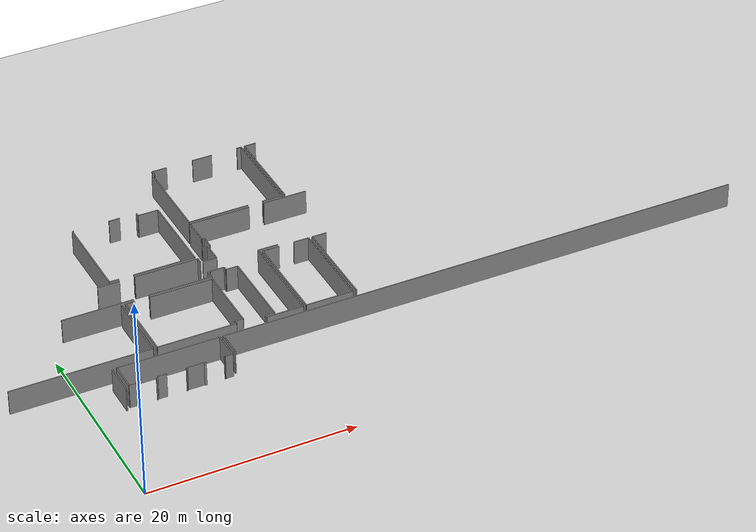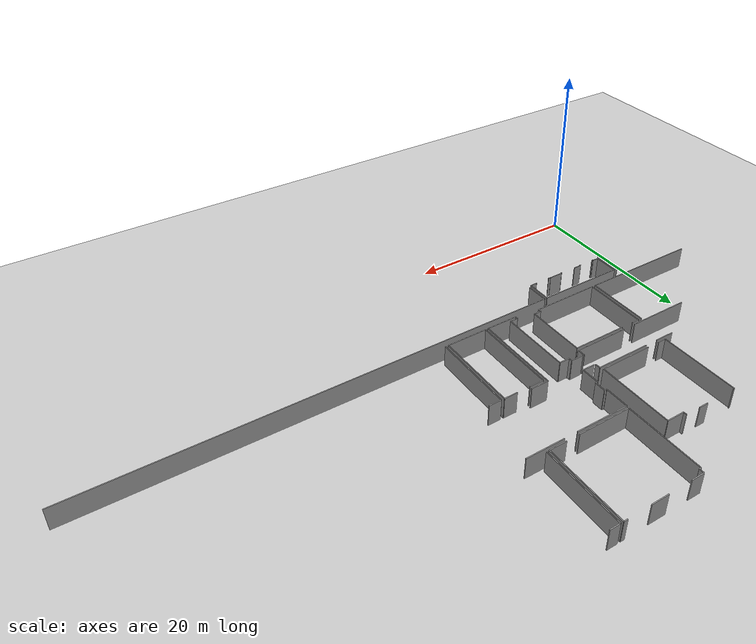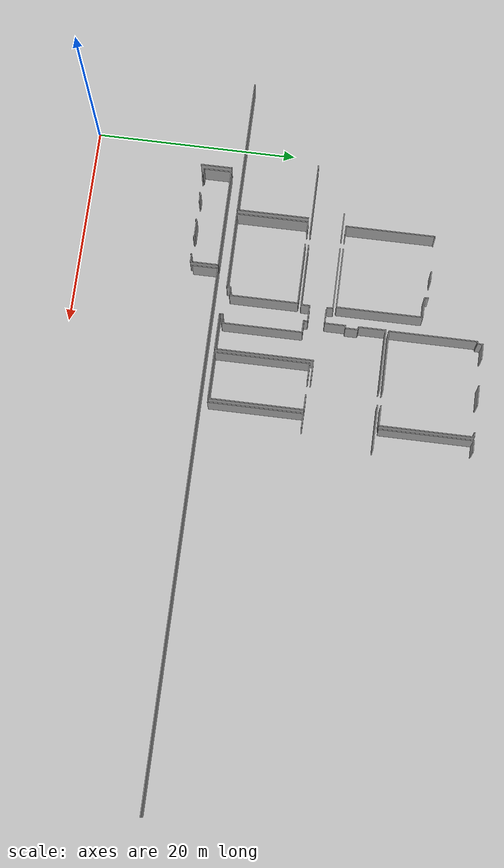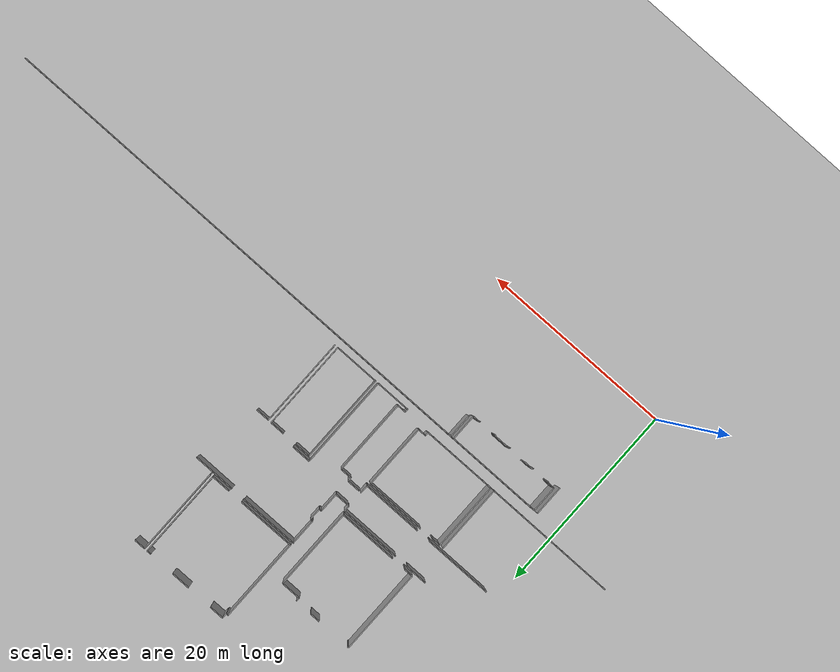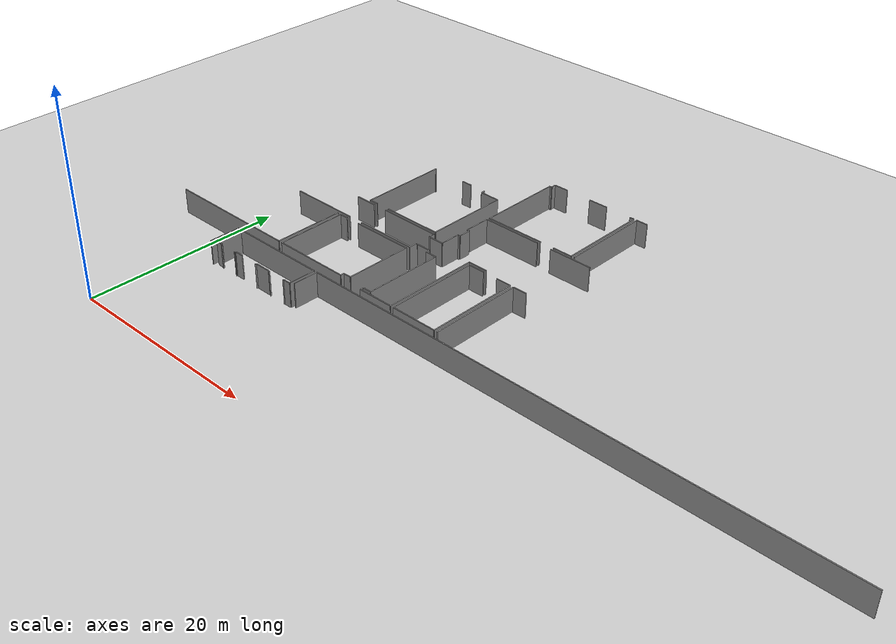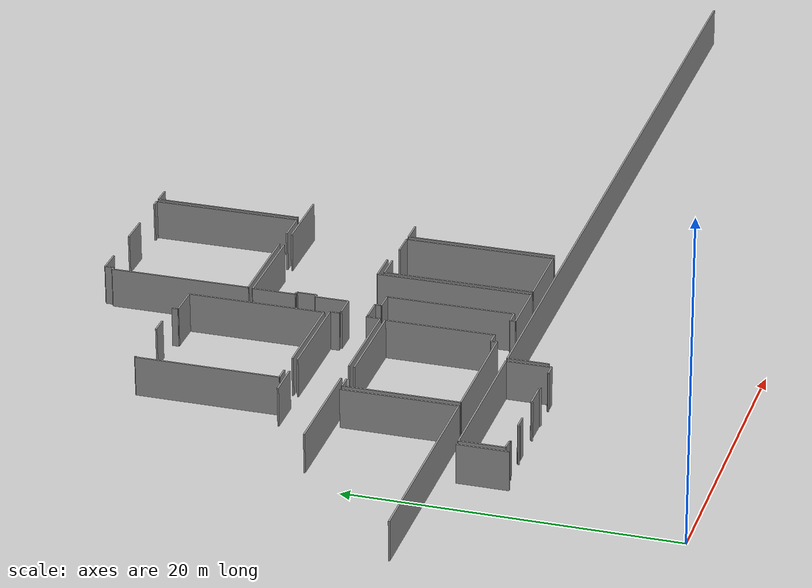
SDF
<sdf version="1.6">
 <world name="default">
  <model name="ground_plane">
   <static>1</static>
   <link name="link">
    <collision name="collision">
     <geometry><plane><normal>0 0 1</normal><size>100 100</size></plane></geometry>
     <surface><friction><ode><mu>100</mu><mu2>50</mu2></ode></friction></surface>
    </collision>
    <visual name="visual">
     <cast_shadows>0</cast_shadows>
     <geometry><plane><normal>0 0 1</normal><size>100 100</size></plane></geometry>
     <material>
      <script><uri>file://media/materials/scripts/gazebo.material</uri><name>Gazebo/Grey</name></script>
     </material>
    </visual>
   </link>
  </model>
  <model name="0510035739_A_40_1_102">
   <static>1</static>
   <link name="Wall_451">
    <collision name="Wall_451_Collision">
     <geometry><box><size>2.17913759133 0.1 2.5</size></box></geometry>
     <pose>1.08956879567 0 1.25 0 0 0</pose>
    </collision>
    <visual name="Wall_451_Visual">
     <pose>1.08956879567 0 1.25 0 0 0</pose>
     <geometry><box><size>2.17913759133 0.1 2.5</size></box></geometry>
     <material>
      <script><uri>file://media/materials/scripts/gazebo.material</uri><name>Gazebo/Grey</name></script>
      <ambient>1 1 1 1</ambient>
     </material>
    </visual>
    <pose>99.0056968337 -24.0800435063 0 0 0 0.0</pose>
   </link>
   <link name="Wall_452">
    <collision name="Wall_452_Collision">
     <geometry><box><size>6.28931458417 0.1 2.5</size></box></geometry>
     <pose>3.14465729209 0 1.25 0 0 0</pose>
    </collision>
    <visual name="Wall_452_Visual">
     <pose>3.14465729209 0 1.25 0 0 0</pose>
     <geometry><box><size>6.28931458417 0.1 2.5</size></box></geometry>
     <material>
      <script><uri>file://media/materials/scripts/gazebo.material</uri><name>Gazebo/Grey</name></script>
      <ambient>1 1 1 1</ambient>
     </material>
    </visual>
    <pose>102.671640517 -24.0800435063 0 0 0 0.0</pose>
   </link>
   <link name="Wall_453">
    <collision name="Wall_453_Collision">
     <geometry><box><size>0.592990334614 0.1 2.5</size></box></geometry>
     <pose>0.296495167307 0 1.25 0 0 0</pose>
    </collision>
    <visual name="Wall_453_Visual">
     <pose>0.296495167307 0 1.25 0 0 0</pose>
     <geometry><box><size>0.592990334614 0.1 2.5</size></box></geometry>
     <material>
      <script><uri>file://media/materials/scripts/gazebo.material</uri><name>Gazebo/Grey</name></script>
      <ambient>1 1 1 1</ambient>
     </material>
    </visual>
    <pose>108.960955102 -24.0800435063 0 0 0 -1.57079632679</pose>
   </link>
   <link name="Wall_454">
    <collision name="Wall_454_Collision">
     <geometry><box><size>0.872419199336 0.1 2.5</size></box></geometry>
     <pose>0.436209599668 0 1.25 0 0 0</pose>
    </collision>
    <visual name="Wall_454_Visual">
     <pose>0.436209599668 0 1.25 0 0 0</pose>
     <geometry><box><size>0.872419199336 0.1 2.5</size></box></geometry>
     <material>
      <script><uri>file://media/materials/scripts/gazebo.material</uri><name>Gazebo/Grey</name></script>
      <ambient>1 1 1 1</ambient>
     </material>
    </visual>
    <pose>108.960955102 -26.3320312848 0 0 0 -1.57079632679</pose>
   </link>
   <link name="Wall_455">
    <collision name="Wall_455_Collision">
     <geometry><box><size>6.22181353663 0.1 2.5</size></box></geometry>
     <pose>3.11090676832 0 1.25 0 0 0</pose>
    </collision>
    <visual name="Wall_455_Visual">
     <pose>3.11090676832 0 1.25 0 0 0</pose>
     <geometry><box><size>6.22181353663 0.1 2.5</size></box></geometry>
     <material>
      <script><uri>file://media/materials/scripts/gazebo.material</uri><name>Gazebo/Grey</name></script>
      <ambient>1 1 1 1</ambient>
     </material>
    </visual>
    <pose>108.960955102 -27.2044504842 0 0 0 3.14159265359</pose>
   </link>
   <link name="Wall_456">
    <collision name="Wall_456_Collision">
     <geometry><box><size>7.00024071128 0.1 2.5</size></box></geometry>
     <pose>3.50012035564 0 1.25 0 0 0</pose>
    </collision>
    <visual name="Wall_456_Visual">
     <pose>3.50012035564 0 1.25 0 0 0</pose>
     <geometry><box><size>7.00024071128 0.1 2.5</size></box></geometry>
     <material>
      <script><uri>file://media/materials/scripts/gazebo.material</uri><name>Gazebo/Grey</name></script>
      <ambient>1 1 1 1</ambient>
     </material>
    </visual>
    <pose>101.216929263 -27.2044504842 0 0 0 3.14159265359</pose>
   </link>
   <link name="Wall_467">
    <collision name="Wall_467_Collision">
     <geometry><box><size>8.82404259953 0.1 2.5</size></box></geometry>
     <pose>4.41202129976 0 1.25 0 0 0</pose>
    </collision>
    <visual name="Wall_467_Visual">
     <pose>4.41202129976 0 1.25 0 0 0</pose>
     <geometry><box><size>8.82404259953 0.1 2.5</size></box></geometry>
     <material>
      <script><uri>file://media/materials/scripts/gazebo.material</uri><name>Gazebo/Grey</name></script>
      <ambient>1 1 1 1</ambient>
     </material>
    </visual>
    <pose>100.318783249 -23.7529818269 0 0 0 1.57079632679</pose>
   </link>
   <link name="Wall_468">
    <collision name="Wall_468_Collision">
     <geometry><box><size>0.121501885572 0.1 2.5</size></box></geometry>
     <pose>0.0607509427859 0 1.25 0 0 0</pose>
    </collision>
    <visual name="Wall_468_Visual">
     <pose>0.0607509427859 0 1.25 0 0 0</pose>
     <geometry><box><size>0.121501885572 0.1 2.5</size></box></geometry>
     <material>
      <script><uri>file://media/materials/scripts/gazebo.material</uri><name>Gazebo/Grey</name></script>
      <ambient>1 1 1 1</ambient>
     </material>
    </visual>
    <pose>100.318783249 -14.9289392274 0 0 0 0.0</pose>
   </link>
   <link name="Wall_469">
    <collision name="Wall_469_Collision">
     <geometry><box><size>1.07517706289 0.1 2.5</size></box></geometry>
     <pose>0.537588531445 0 1.25 0 0 0</pose>
    </collision>
    <visual name="Wall_469_Visual">
     <pose>0.537588531445 0 1.25 0 0 0</pose>
     <geometry><box><size>1.07517706289 0.1 2.5</size></box></geometry>
     <material>
      <script><uri>file://media/materials/scripts/gazebo.material</uri><name>Gazebo/Grey</name></script>
      <ambient>1 1 1 1</ambient>
     </material>
    </visual>
    <pose>103.978358909 -14.9289392274 0 0 0 0.0</pose>
   </link>
   <link name="Wall_470">
    <collision name="Wall_470_Collision">
     <geometry><box><size>0.383609726774 0.1 2.5</size></box></geometry>
     <pose>0.191804863387 0 1.25 0 0 0</pose>
    </collision>
    <visual name="Wall_470_Visual">
     <pose>0.191804863387 0 1.25 0 0 0</pose>
     <geometry><box><size>0.383609726774 0.1 2.5</size></box></geometry>
     <material>
      <script><uri>file://media/materials/scripts/gazebo.material</uri><name>Gazebo/Grey</name></script>
      <ambient>1 1 1 1</ambient>
     </material>
    </visual>
    <pose>106.770609789 -14.9289392274 0 0 0 -1.57079632679</pose>
   </link>
   <link name="Wall_471">
    <collision name="Wall_471_Collision">
     <geometry><box><size>2.03012584488 0.1 2.5</size></box></geometry>
     <pose>1.01506292244 0 1.25 0 0 0</pose>
    </collision>
    <visual name="Wall_471_Visual">
     <pose>1.01506292244 0 1.25 0 0 0</pose>
     <geometry><box><size>2.03012584488 0.1 2.5</size></box></geometry>
     <material>
      <script><uri>file://media/materials/scripts/gazebo.material</uri><name>Gazebo/Grey</name></script>
      <ambient>1 1 1 1</ambient>
     </material>
    </visual>
    <pose>106.770609789 -15.3125489542 0 0 0 0.0</pose>
   </link>
   <link name="Wall_472">
    <collision name="Wall_472_Collision">
     <geometry><box><size>8.4445084077 0.1 2.5</size></box></geometry>
     <pose>4.22225420385 0 1.25 0 0 0</pose>
    </collision>
    <visual name="Wall_472_Visual">
     <pose>4.22225420385 0 1.25 0 0 0</pose>
     <geometry><box><size>8.4445084077 0.1 2.5</size></box></geometry>
     <material>
      <script><uri>file://media/materials/scripts/gazebo.material</uri><name>Gazebo/Grey</name></script>
      <ambient>1 1 1 1</ambient>
     </material>
    </visual>
    <pose>108.800735634 -15.3125489542 0 0 0 -1.57079632679</pose>
   </link>
   <link name="Wall_473">
    <collision name="Wall_473_Collision">
     <geometry><box><size>6.07331123205 0.1 2.5</size></box></geometry>
     <pose>3.03665561602 0 1.25 0 0 0</pose>
    </collision>
    <visual name="Wall_473_Visual">
     <pose>3.03665561602 0 1.25 0 0 0</pose>
     <geometry><box><size>6.07331123205 0.1 2.5</size></box></geometry>
     <material>
      <script><uri>file://media/materials/scripts/gazebo.material</uri><name>Gazebo/Grey</name></script>
      <ambient>1 1 1 1</ambient>
     </material>
    </visual>
    <pose>108.800735634 -23.7570573619 0 0 0 3.14159265359</pose>
   </link>
   <link name="Wall_474">
    <collision name="Wall_474_Collision">
     <geometry><box><size>0.925410128066 0.1 2.5</size></box></geometry>
     <pose>0.462705064033 0 1.25 0 0 0</pose>
    </collision>
    <visual name="Wall_474_Visual">
     <pose>0.462705064033 0 1.25 0 0 0</pose>
     <geometry><box><size>0.925410128066 0.1 2.5</size></box></geometry>
     <material>
      <script><uri>file://media/materials/scripts/gazebo.material</uri><name>Gazebo/Grey</name></script>
      <ambient>1 1 1 1</ambient>
     </material>
    </visual>
    <pose>101.244184403 -23.7570573619 0 0 0 3.13718860829</pose>
   </link>
   <link name="Wall_478">
    <collision name="Wall_478_Collision">
     <geometry><box><size>7.11766706191 0.1 2.5</size></box></geometry>
     <pose>3.55883353095 0 1.25 0 0 0</pose>
    </collision>
    <visual name="Wall_478_Visual">
     <pose>3.55883353095 0 1.25 0 0 0</pose>
     <geometry><box><size>7.11766706191 0.1 2.5</size></box></geometry>
     <material>
      <script><uri>file://media/materials/scripts/gazebo.material</uri><name>Gazebo/Grey</name></script>
      <ambient>1 1 1 1</ambient>
     </material>
    </visual>
    <pose>99.9035881264 -27.5266724658 0 0 0 -1.57079632679</pose>
   </link>
   <link name="Wall_479">
    <collision name="Wall_479_Collision">
     <geometry><box><size>13.7113771396 0.1 2.5</size></box></geometry>
     <pose>6.85568856981 0 1.25 0 0 0</pose>
    </collision>
    <visual name="Wall_479_Visual">
     <pose>6.85568856981 0 1.25 0 0 0</pose>
     <geometry><box><size>13.7113771396 0.1 2.5</size></box></geometry>
     <material>
      <script><uri>file://media/materials/scripts/gazebo.material</uri><name>Gazebo/Grey</name></script>
      <ambient>1 1 1 1</ambient>
     </material>
    </visual>
    <pose>99.9035881264 -34.6443395277 0 0 0 3.14083098252</pose>
   </link>
   <link name="Wall_480">
    <collision name="Wall_480_Collision">
     <geometry><box><size>7.10722350361 0.1 2.5</size></box></geometry>
     <pose>3.55361175181 0 1.25 0 0 0</pose>
    </collision>
    <visual name="Wall_480_Visual">
     <pose>3.55361175181 0 1.25 0 0 0</pose>
     <geometry><box><size>7.10722350361 0.1 2.5</size></box></geometry>
     <material>
      <script><uri>file://media/materials/scripts/gazebo.material</uri><name>Gazebo/Grey</name></script>
      <ambient>1 1 1 1</ambient>
     </material>
    </visual>
    <pose>100.318019086 -34.6443395277 0 0 0 1.57079632679</pose>
   </link>
   <link name="Wall_481">
    <collision name="Wall_481_Collision">
     <geometry><box><size>0.868598385324 0.1 2.5</size></box></geometry>
     <pose>0.434299192662 0 1.25 0 0 0</pose>
    </collision>
    <visual name="Wall_481_Visual">
     <pose>0.434299192662 0 1.25 0 0 0</pose>
     <geometry><box><size>0.868598385324 0.1 2.5</size></box></geometry>
     <material>
      <script><uri>file://media/materials/scripts/gazebo.material</uri><name>Gazebo/Grey</name></script>
      <ambient>1 1 1 1</ambient>
     </material>
    </visual>
    <pose>100.318019086 -27.5371160241 0 0 0 0.0</pose>
   </link>
   <link name="Wall_482">
    <collision name="Wall_482_Collision">
     <geometry><box><size>6.18538844306 0.1 2.5</size></box></geometry>
     <pose>3.09269422153 0 1.25 0 0 0</pose>
    </collision>
    <visual name="Wall_482_Visual">
     <pose>3.09269422153 0 1.25 0 0 0</pose>
     <geometry><box><size>6.18538844306 0.1 2.5</size></box></geometry>
     <material>
      <script><uri>file://media/materials/scripts/gazebo.material</uri><name>Gazebo/Grey</name></script>
      <ambient>1 1 1 1</ambient>
     </material>
    </visual>
    <pose>102.663234727 -27.5371160241 0 0 0 0.0</pose>
   </link>
   <link name="Wall_483">
    <collision name="Wall_483_Collision">
     <geometry><box><size>6.72030240469 0.1 2.5</size></box></geometry>
     <pose>3.36015120235 0 1.25 0 0 0</pose>
    </collision>
    <visual name="Wall_483_Visual">
     <pose>3.36015120235 0 1.25 0 0 0</pose>
     <geometry><box><size>6.72030240469 0.1 2.5</size></box></geometry>
     <material>
      <script><uri>file://media/materials/scripts/gazebo.material</uri><name>Gazebo/Grey</name></script>
      <ambient>1 1 1 1</ambient>
     </material>
    </visual>
    <pose>108.84862317 -27.5371160241 0 0 0 -1.57079632679</pose>
   </link>
   <link name="Wall_484">
    <collision name="Wall_484_Collision">
     <geometry><box><size>0.820201407843 0.1 2.5</size></box></geometry>
     <pose>0.410100703921 0 1.25 0 0 0</pose>
    </collision>
    <visual name="Wall_484_Visual">
     <pose>0.410100703921 0 1.25 0 0 0</pose>
     <geometry><box><size>0.820201407843 0.1 2.5</size></box></geometry>
     <material>
      <script><uri>file://media/materials/scripts/gazebo.material</uri><name>Gazebo/Grey</name></script>
      <ambient>1 1 1 1</ambient>
     </material>
    </visual>
    <pose>108.84862317 -34.2574184288 0 0 0 3.14159265359</pose>
   </link>
   <link name="Wall_485">
    <collision name="Wall_485_Collision">
     <geometry><box><size>0.366288703254 0.1 2.5</size></box></geometry>
     <pose>0.183144351627 0 1.25 0 0 0</pose>
    </collision>
    <visual name="Wall_485_Visual">
     <pose>0.183144351627 0 1.25 0 0 0</pose>
     <geometry><box><size>0.366288703254 0.1 2.5</size></box></geometry>
     <material>
      <script><uri>file://media/materials/scripts/gazebo.material</uri><name>Gazebo/Grey</name></script>
      <ambient>1 1 1 1</ambient>
     </material>
    </visual>
    <pose>108.028421762 -34.2574184288 0 0 0 -1.57079632679</pose>
   </link>
   <link name="Wall_486">
    <collision name="Wall_486_Collision">
     <geometry><box><size>7.71043028083 0.1 2.5</size></box></geometry>
     <pose>3.85521514041 0 1.25 0 0 0</pose>
    </collision>
    <visual name="Wall_486_Visual">
     <pose>3.85521514041 0 1.25 0 0 0</pose>
     <geometry><box><size>7.71043028083 0.1 2.5</size></box></geometry>
     <material>
      <script><uri>file://media/materials/scripts/gazebo.material</uri><name>Gazebo/Grey</name></script>
      <ambient>1 1 1 1</ambient>
     </material>
    </visual>
    <pose>108.028421762 -34.6237071321 0 0 0 -3.13891674323</pose>
   </link>
   <link name="Wall_487">
    <collision name="Wall_487_Collision">
     <geometry><box><size>2.72908008808 0.1 2.5</size></box></geometry>
     <pose>1.36454004404 0 1.25 0 0 0</pose>
    </collision>
    <visual name="Wall_487_Visual">
     <pose>1.36454004404 0 1.25 0 0 0</pose>
     <geometry><box><size>2.72908008808 0.1 2.5</size></box></geometry>
     <material>
      <script><uri>file://media/materials/scripts/gazebo.material</uri><name>Gazebo/Grey</name></script>
      <ambient>1 1 1 1</ambient>
     </material>
    </visual>
    <pose>95.9498097871 -38.4957200515 0 0 0 1.57079632679</pose>
   </link>
   <link name="Wall_488">
    <collision name="Wall_488_Collision">
     <geometry><box><size>9.93462587226 0.1 2.5</size></box></geometry>
     <pose>4.96731293613 0 1.25 0 0 0</pose>
    </collision>
    <visual name="Wall_488_Visual">
     <pose>4.96731293613 0 1.25 0 0 0</pose>
     <geometry><box><size>9.93462587226 0.1 2.5</size></box></geometry>
     <material>
      <script><uri>file://media/materials/scripts/gazebo.material</uri><name>Gazebo/Grey</name></script>
      <ambient>1 1 1 1</ambient>
     </material>
    </visual>
    <pose>95.9498097871 -35.7666399634 0 0 0 0.0</pose>
   </link>
   <link name="Wall_489">
    <collision name="Wall_489_Collision">
     <geometry><box><size>2.74589166973 0.1 2.5</size></box></geometry>
     <pose>1.37294583487 0 1.25 0 0 0</pose>
    </collision>
    <visual name="Wall_489_Visual">
     <pose>1.37294583487 0 1.25 0 0 0</pose>
     <geometry><box><size>2.74589166973 0.1 2.5</size></box></geometry>
     <material>
      <script><uri>file://media/materials/scripts/gazebo.material</uri><name>Gazebo/Grey</name></script>
      <ambient>1 1 1 1</ambient>
     </material>
    </visual>
    <pose>105.884435659 -35.7666399634 0 0 0 -1.57079632679</pose>
   </link>
   <link name="Wall_490">
    <collision name="Wall_490_Collision">
     <geometry><box><size>0.748879546291 0.1 2.5</size></box></geometry>
     <pose>0.374439773146 0 1.25 0 0 0</pose>
    </collision>
    <visual name="Wall_490_Visual">
     <pose>0.374439773146 0 1.25 0 0 0</pose>
     <geometry><box><size>0.748879546291 0.1 2.5</size></box></geometry>
     <material>
      <script><uri>file://media/materials/scripts/gazebo.material</uri><name>Gazebo/Grey</name></script>
      <ambient>1 1 1 1</ambient>
     </material>
    </visual>
    <pose>105.884435659 -38.5125316332 0 0 0 3.14159265359</pose>
   </link>
   <link name="Wall_491">
    <collision name="Wall_491_Collision">
     <geometry><box><size>0.110090434872 0.1 2.5</size></box></geometry>
     <pose>0.0550452174361 0 1.25 0 0 0</pose>
    </collision>
    <visual name="Wall_491_Visual">
     <pose>0.0550452174361 0 1.25 0 0 0</pose>
     <geometry><box><size>0.110090434872 0.1 2.5</size></box></geometry>
     <material>
      <script><uri>file://media/materials/scripts/gazebo.material</uri><name>Gazebo/Grey</name></script>
      <ambient>1 1 1 1</ambient>
     </material>
    </visual>
    <pose>105.135556113 -38.5125316332 0 0 0 -2.49901704199</pose>
   </link>
   <link name="Wall_492">
    <collision name="Wall_492_Collision">
     <geometry><box><size>0.226337001325 0.1 2.5</size></box></geometry>
     <pose>0.113168500663 0 1.25 0 0 0</pose>
    </collision>
    <visual name="Wall_492_Visual">
     <pose>0.113168500663 0 1.25 0 0 0</pose>
     <geometry><box><size>0.226337001325 0.1 2.5</size></box></geometry>
     <material>
      <script><uri>file://media/materials/scripts/gazebo.material</uri><name>Gazebo/Grey</name></script>
      <ambient>1 1 1 1</ambient>
     </material>
    </visual>
    <pose>103.304112597 -38.5785043551 0 0 0 2.76714680834</pose>
   </link>
   <link name="Wall_493">
    <collision name="Wall_493_Collision">
     <geometry><box><size>1.58945862886 0.1 2.5</size></box></geometry>
     <pose>0.794729314431 0 1.25 0 0 0</pose>
    </collision>
    <visual name="Wall_493_Visual">
     <pose>0.794729314431 0 1.25 0 0 0</pose>
     <geometry><box><size>1.58945862886 0.1 2.5</size></box></geometry>
     <material>
      <script><uri>file://media/materials/scripts/gazebo.material</uri><name>Gazebo/Grey</name></script>
      <ambient>1 1 1 1</ambient>
     </material>
    </visual>
    <pose>103.093458384 -38.4957200515 0 0 0 3.14159265359</pose>
   </link>
   <link name="Wall_494">
    <collision name="Wall_494_Collision">
     <geometry><box><size>0.163039306914 0.1 2.5</size></box></geometry>
     <pose>0.081519653457 0 1.25 0 0 0</pose>
    </collision>
    <visual name="Wall_494_Visual">
     <pose>0.081519653457 0 1.25 0 0 0</pose>
     <geometry><box><size>0.163039306914 0.1 2.5</size></box></geometry>
     <material>
      <script><uri>file://media/materials/scripts/gazebo.material</uri><name>Gazebo/Grey</name></script>
      <ambient>1 1 1 1</ambient>
     </material>
    </visual>
    <pose>101.503999755 -38.4957200515 0 0 0 -2.44025315302</pose>
   </link>
   <link name="Wall_497">
    <collision name="Wall_497_Collision">
     <geometry><box><size>0.91291982786 0.1 2.5</size></box></geometry>
     <pose>0.45645991393 0 1.25 0 0 0</pose>
    </collision>
    <visual name="Wall_497_Visual">
     <pose>0.45645991393 0 1.25 0 0 0</pose>
     <geometry><box><size>0.91291982786 0.1 2.5</size></box></geometry>
     <material>
      <script><uri>file://media/materials/scripts/gazebo.material</uri><name>Gazebo/Grey</name></script>
      <ambient>1 1 1 1</ambient>
     </material>
    </visual>
    <pose>99.5253275393 -38.5051447261 0 0 0 3.14159265359</pose>
   </link>
   <link name="Wall_498">
    <collision name="Wall_498_Collision">
     <geometry><box><size>0.0756521174314 0.1 2.5</size></box></geometry>
     <pose>0.0378260587157 0 1.25 0 0 0</pose>
    </collision>
    <visual name="Wall_498_Visual">
     <pose>0.0378260587157 0 1.25 0 0 0</pose>
     <geometry><box><size>0.0756521174314 0.1 2.5</size></box></geometry>
     <material>
      <script><uri>file://media/materials/scripts/gazebo.material</uri><name>Gazebo/Grey</name></script>
      <ambient>1 1 1 1</ambient>
     </material>
    </visual>
    <pose>98.6124077114 -38.5051447261 0 0 0 -1.57079632679</pose>
   </link>
   <link name="Wall_499">
    <collision name="Wall_499_Collision">
     <geometry><box><size>0.100614768975 0.1 2.5</size></box></geometry>
     <pose>0.0503073844873 0 1.25 0 0 0</pose>
    </collision>
    <visual name="Wall_499_Visual">
     <pose>0.0503073844873 0 1.25 0 0 0</pose>
     <geometry><box><size>0.100614768975 0.1 2.5</size></box></geometry>
     <material>
      <script><uri>file://media/materials/scripts/gazebo.material</uri><name>Gazebo/Grey</name></script>
      <ambient>1 1 1 1</ambient>
     </material>
    </visual>
    <pose>98.6124077114 -38.5807968435 0 0 0 3.14159265359</pose>
   </link>
   <link name="Wall_500">
    <collision name="Wall_500_Collision">
     <geometry><box><size>0.123030211176 0.1 2.5</size></box></geometry>
     <pose>0.0615151055882 0 1.25 0 0 0</pose>
    </collision>
    <visual name="Wall_500_Visual">
     <pose>0.0615151055882 0 1.25 0 0 0</pose>
     <geometry><box><size>0.123030211176 0.1 2.5</size></box></geometry>
     <material>
      <script><uri>file://media/materials/scripts/gazebo.material</uri><name>Gazebo/Grey</name></script>
      <ambient>1 1 1 1</ambient>
     </material>
    </visual>
    <pose>96.7773981021 -38.5807968435 0 0 0 3.14159265359</pose>
   </link>
   <link name="Wall_501">
    <collision name="Wall_501_Collision">
     <geometry><box><size>0.0481422565473 0.1 2.5</size></box></geometry>
     <pose>0.0240711282736 0 1.25 0 0 0</pose>
    </collision>
    <visual name="Wall_501_Visual">
     <pose>0.0240711282736 0 1.25 0 0 0</pose>
     <geometry><box><size>0.0481422565473 0.1 2.5</size></box></geometry>
     <material>
      <script><uri>file://media/materials/scripts/gazebo.material</uri><name>Gazebo/Grey</name></script>
      <ambient>1 1 1 1</ambient>
     </material>
    </visual>
    <pose>96.6543678909 -38.5807968435 0 0 0 1.57079632679</pose>
   </link>
   <link name="Wall_502">
    <collision name="Wall_502_Collision">
     <geometry><box><size>0.705525535666 0.1 2.5</size></box></geometry>
     <pose>0.352762767833 0 1.25 0 0 0</pose>
    </collision>
    <visual name="Wall_502_Visual">
     <pose>0.352762767833 0 1.25 0 0 0</pose>
     <geometry><box><size>0.705525535666 0.1 2.5</size></box></geometry>
     <material>
      <script><uri>file://media/materials/scripts/gazebo.material</uri><name>Gazebo/Grey</name></script>
      <ambient>1 1 1 1</ambient>
     </material>
    </visual>
    <pose>96.6543678909 -38.532654587 0 0 0 3.08921832459</pose>
   </link>
   <link name="Wall_511">
    <collision name="Wall_511_Collision">
     <geometry><box><size>3.116001187 0.1 2.5</size></box></geometry>
     <pose>1.5580005935 0 1.25 0 0 0</pose>
    </collision>
    <visual name="Wall_511_Visual">
     <pose>1.5580005935 0 1.25 0 0 0</pose>
     <geometry><box><size>3.116001187 0.1 2.5</size></box></geometry>
     <material>
      <script><uri>file://media/materials/scripts/gazebo.material</uri><name>Gazebo/Grey</name></script>
      <ambient>1 1 1 1</ambient>
     </material>
    </visual>
    <pose>95.5330863389 -35.7521208702 0 0 0 -1.57079632679</pose>
   </link>
   <link name="Wall_566">
    <collision name="Wall_566_Collision">
     <geometry><box><size>2.53294496882 0.1 2.5</size></box></geometry>
     <pose>1.26647248441 0 1.25 0 0 0</pose>
    </collision>
    <visual name="Wall_566_Visual">
     <pose>1.26647248441 0 1.25 0 0 0</pose>
     <geometry><box><size>2.53294496882 0.1 2.5</size></box></geometry>
     <material>
      <script><uri>file://media/materials/scripts/gazebo.material</uri><name>Gazebo/Grey</name></script>
      <ambient>1 1 1 1</ambient>
     </material>
    </visual>
    <pose>106.226780595 -38.2939810717 0 0 0 1.57079632679</pose>
   </link>
   <link name="Wall_567">
    <collision name="Wall_567_Collision">
     <geometry><box><size>52.531352963 0.1 2.5</size></box></geometry>
     <pose>26.2656764815 0 1.25 0 0 0</pose>
    </collision>
    <visual name="Wall_567_Visual">
     <pose>26.2656764815 0 1.25 0 0 0</pose>
     <geometry><box><size>52.531352963 0.1 2.5</size></box></geometry>
     <material>
      <script><uri>file://media/materials/scripts/gazebo.material</uri><name>Gazebo/Grey</name></script>
      <ambient>1 1 1 1</ambient>
     </material>
    </visual>
    <pose>106.226780595 -35.7610361029 0 0 0 0.0</pose>
   </link>
   <link name="Wall_746">
    <collision name="Wall_746_Collision">
     <geometry><box><size>0.0832937454548 0.1 2.5</size></box></geometry>
     <pose>0.0416468727274 0 1.25 0 0 0</pose>
    </collision>
    <visual name="Wall_746_Visual">
     <pose>0.0416468727274 0 1.25 0 0 0</pose>
     <geometry><box><size>0.0832937454548 0.1 2.5</size></box></geometry>
     <material>
      <script><uri>file://media/materials/scripts/gazebo.material</uri><name>Gazebo/Grey</name></script>
      <ambient>1 1 1 1</ambient>
     </material>
    </visual>
    <pose>110.63472636 -21.4090397912 0 0 0 3.14159265359</pose>
   </link>
   <link name="Wall_747">
    <collision name="Wall_747_Collision">
     <geometry><box><size>2.67533397098 0.1 2.5</size></box></geometry>
     <pose>1.33766698549 0 1.25 0 0 0</pose>
    </collision>
    <visual name="Wall_747_Visual">
     <pose>1.33766698549 0 1.25 0 0 0</pose>
     <geometry><box><size>2.67533397098 0.1 2.5</size></box></geometry>
     <material>
      <script><uri>file://media/materials/scripts/gazebo.material</uri><name>Gazebo/Grey</name></script>
      <ambient>1 1 1 1</ambient>
     </material>
    </visual>
    <pose>110.551432614 -21.4090397912 0 0 0 1.57079632679</pose>
   </link>
   <link name="Wall_748">
    <collision name="Wall_748_Collision">
     <geometry><box><size>6.05369772012 0.1 2.5</size></box></geometry>
     <pose>3.02684886006 0 1.25 0 0 0</pose>
    </collision>
    <visual name="Wall_748_Visual">
     <pose>3.02684886006 0 1.25 0 0 0</pose>
     <geometry><box><size>6.05369772012 0.1 2.5</size></box></geometry>
     <material>
      <script><uri>file://media/materials/scripts/gazebo.material</uri><name>Gazebo/Grey</name></script>
      <ambient>1 1 1 1</ambient>
     </material>
    </visual>
    <pose>110.551432614 -18.7337058202 0 0 0 0.0</pose>
   </link>
   <link name="Wall_749">
    <collision name="Wall_749_Collision">
     <geometry><box><size>4.38578504355 0.1 2.5</size></box></geometry>
     <pose>2.19289252178 0 1.25 0 0 0</pose>
    </collision>
    <visual name="Wall_749_Visual">
     <pose>2.19289252178 0 1.25 0 0 0</pose>
     <geometry><box><size>4.38578504355 0.1 2.5</size></box></geometry>
     <material>
      <script><uri>file://media/materials/scripts/gazebo.material</uri><name>Gazebo/Grey</name></script>
      <ambient>1 1 1 1</ambient>
     </material>
    </visual>
    <pose>118.108493287 -18.7337058202 0 0 0 0.0</pose>
   </link>
   <link name="Wall_758">
    <collision name="Wall_758_Collision">
     <geometry><box><size>1.99828572811 0.1 2.5</size></box></geometry>
     <pose>0.999142864057 0 1.25 0 0 0</pose>
    </collision>
    <visual name="Wall_758_Visual">
     <pose>0.999142864057 0 1.25 0 0 0</pose>
     <geometry><box><size>1.99828572811 0.1 2.5</size></box></geometry>
     <material>
      <script><uri>file://media/materials/scripts/gazebo.material</uri><name>Gazebo/Grey</name></script>
      <ambient>1 1 1 1</ambient>
     </material>
    </visual>
    <pose>116.457646913 -25.3638370143 0 0 0 3.14159265359</pose>
   </link>
   <link name="Wall_759">
    <collision name="Wall_759_Collision">
     <geometry><box><size>9.60272449511 0.1 2.5</size></box></geometry>
     <pose>4.80136224756 0 1.25 0 0 0</pose>
    </collision>
    <visual name="Wall_759_Visual">
     <pose>4.80136224756 0 1.25 0 0 0</pose>
     <geometry><box><size>9.60272449511 0.1 2.5</size></box></geometry>
     <material>
      <script><uri>file://media/materials/scripts/gazebo.material</uri><name>Gazebo/Grey</name></script>
      <ambient>1 1 1 1</ambient>
     </material>
    </visual>
    <pose>114.459361185 -25.3638370143 0 0 0 -1.57079632679</pose>
   </link>
   <link name="Wall_760">
    <collision name="Wall_760_Collision">
     <geometry><box><size>3.59742375247 0.1 2.5</size></box></geometry>
     <pose>1.79871187624 0 1.25 0 0 0</pose>
    </collision>
    <visual name="Wall_760_Visual">
     <pose>1.79871187624 0 1.25 0 0 0</pose>
     <geometry><box><size>3.59742375247 0.1 2.5</size></box></geometry>
     <material>
      <script><uri>file://media/materials/scripts/gazebo.material</uri><name>Gazebo/Grey</name></script>
      <ambient>1 1 1 1</ambient>
     </material>
    </visual>
    <pose>114.459361185 -34.9665615094 0 0 0 3.14159265359</pose>
   </link>
   <link name="Wall_761">
    <collision name="Wall_761_Collision">
     <geometry><box><size>0.319420051377 0.1 2.5</size></box></geometry>
     <pose>0.159710025689 0 1.25 0 0 0</pose>
    </collision>
    <visual name="Wall_761_Visual">
     <pose>0.159710025689 0 1.25 0 0 0</pose>
     <geometry><box><size>0.319420051377 0.1 2.5</size></box></geometry>
     <material>
      <script><uri>file://media/materials/scripts/gazebo.material</uri><name>Gazebo/Grey</name></script>
      <ambient>1 1 1 1</ambient>
     </material>
    </visual>
    <pose>110.861937433 -34.9665615094 0 0 0 1.57079632679</pose>
   </link>
   <link name="Wall_762">
    <collision name="Wall_762_Collision">
     <geometry><box><size>0.892032711262 0.1 2.5</size></box></geometry>
     <pose>0.446016355631 0 1.25 0 0 0</pose>
    </collision>
    <visual name="Wall_762_Visual">
     <pose>0.446016355631 0 1.25 0 0 0</pose>
     <geometry><box><size>0.892032711262 0.1 2.5</size></box></geometry>
     <material>
      <script><uri>file://media/materials/scripts/gazebo.material</uri><name>Gazebo/Grey</name></script>
      <ambient>1 1 1 1</ambient>
     </material>
    </visual>
    <pose>110.861937433 -34.647141458 0 0 0 0.0</pose>
   </link>
   <link name="Wall_763">
    <collision name="Wall_763_Collision">
     <geometry><box><size>7.87240518968 0.1 2.5</size></box></geometry>
     <pose>3.93620259484 0 1.25 0 0 0</pose>
    </collision>
    <visual name="Wall_763_Visual">
     <pose>3.93620259484 0 1.25 0 0 0</pose>
     <geometry><box><size>7.87240518968 0.1 2.5</size></box></geometry>
     <material>
      <script><uri>file://media/materials/scripts/gazebo.material</uri><name>Gazebo/Grey</name></script>
      <ambient>1 1 1 1</ambient>
     </material>
    </visual>
    <pose>111.753970144 -34.647141458 0 0 0 1.57079632679</pose>
   </link>
   <link name="Wall_764">
    <collision name="Wall_764_Collision">
     <geometry><box><size>1.18165041335 0.1 2.5</size></box></geometry>
     <pose>0.590825206674 0 1.25 0 0 0</pose>
    </collision>
    <visual name="Wall_764_Visual">
     <pose>0.590825206674 0 1.25 0 0 0</pose>
     <geometry><box><size>1.18165041335 0.1 2.5</size></box></geometry>
     <material>
      <script><uri>file://media/materials/scripts/gazebo.material</uri><name>Gazebo/Grey</name></script>
      <ambient>1 1 1 1</ambient>
     </material>
    </visual>
    <pose>111.753970144 -26.7747362683 0 0 0 3.14159265359</pose>
   </link>
   <link name="Wall_765">
    <collision name="Wall_765_Collision">
     <geometry><box><size>0.392524959468 0.1 2.5</size></box></geometry>
     <pose>0.196262479734 0 1.25 0 0 0</pose>
    </collision>
    <visual name="Wall_765_Visual">
     <pose>0.196262479734 0 1.25 0 0 0</pose>
     <geometry><box><size>0.392524959468 0.1 2.5</size></box></geometry>
     <material>
      <script><uri>file://media/materials/scripts/gazebo.material</uri><name>Gazebo/Grey</name></script>
      <ambient>1 1 1 1</ambient>
     </material>
    </visual>
    <pose>110.572319731 -26.7747362683 0 0 0 1.57079632679</pose>
   </link>
   <link name="Wall_766">
    <collision name="Wall_766_Collision">
     <geometry><box><size>1.40758788191 0.1 2.5</size></box></geometry>
     <pose>0.703793940953 0 1.25 0 0 0</pose>
    </collision>
    <visual name="Wall_766_Visual">
     <pose>0.703793940953 0 1.25 0 0 0</pose>
     <geometry><box><size>1.40758788191 0.1 2.5</size></box></geometry>
     <material>
      <script><uri>file://media/materials/scripts/gazebo.material</uri><name>Gazebo/Grey</name></script>
      <ambient>1 1 1 1</ambient>
     </material>
    </visual>
    <pose>110.572319731 -26.3822113088 0 0 0 3.14159265359</pose>
   </link>
   <link name="Wall_767">
    <collision name="Wall_767_Collision">
     <geometry><box><size>1.40325762603 0.1 2.5</size></box></geometry>
     <pose>0.701628813013 0 1.25 0 0 0</pose>
    </collision>
    <visual name="Wall_767_Visual">
     <pose>0.701628813013 0 1.25 0 0 0</pose>
     <geometry><box><size>1.40325762603 0.1 2.5</size></box></geometry>
     <material>
      <script><uri>file://media/materials/scripts/gazebo.material</uri><name>Gazebo/Grey</name></script>
      <ambient>1 1 1 1</ambient>
     </material>
    </visual>
    <pose>109.164731849 -24.7148080741 0 0 0 0.0</pose>
   </link>
   <link name="Wall_768">
    <collision name="Wall_768_Collision">
     <geometry><box><size>2.05763570576 0.1 2.5</size></box></geometry>
     <pose>1.02881785288 0 1.25 0 0 0</pose>
    </collision>
    <visual name="Wall_768_Visual">
     <pose>1.02881785288 0 1.25 0 0 0</pose>
     <geometry><box><size>2.05763570576 0.1 2.5</size></box></geometry>
     <material>
      <script><uri>file://media/materials/scripts/gazebo.material</uri><name>Gazebo/Grey</name></script>
      <ambient>1 1 1 1</ambient>
     </material>
    </visual>
    <pose>110.567989475 -24.7148080741 0 0 0 1.57079632679</pose>
   </link>
   <link name="Wall_769">
    <collision name="Wall_769_Collision">
     <geometry><box><size>0.253192608508 0.1 2.5</size></box></geometry>
     <pose>0.126596304254 0 1.25 0 0 0</pose>
    </collision>
    <visual name="Wall_769_Visual">
     <pose>0.126596304254 0 1.25 0 0 0</pose>
     <geometry><box><size>0.253192608508 0.1 2.5</size></box></geometry>
     <material>
      <script><uri>file://media/materials/scripts/gazebo.material</uri><name>Gazebo/Grey</name></script>
      <ambient>1 1 1 1</ambient>
     </material>
    </visual>
    <pose>110.567989475 -22.6571723684 0 0 0 0.0</pose>
   </link>
   <link name="Wall_770">
    <collision name="Wall_770_Collision">
     <geometry><box><size>1.21603773945 0.1 2.5</size></box></geometry>
     <pose>0.608018869727 0 1.25 0 0 0</pose>
    </collision>
    <visual name="Wall_770_Visual">
     <pose>0.608018869727 0 1.25 0 0 0</pose>
     <geometry><box><size>1.21603773945 0.1 2.5</size></box></geometry>
     <material>
      <script><uri>file://media/materials/scripts/gazebo.material</uri><name>Gazebo/Grey</name></script>
      <ambient>1 1 1 1</ambient>
     </material>
    </visual>
    <pose>110.821182083 -22.6571723684 0 0 0 1.57079632679</pose>
   </link>
   <link name="Wall_771">
    <collision name="Wall_771_Collision">
     <geometry><box><size>0.189197821165 0.1 2.5</size></box></geometry>
     <pose>0.0945989105826 0 1.25 0 0 0</pose>
    </collision>
    <visual name="Wall_771_Visual">
     <pose>0.0945989105826 0 1.25 0 0 0</pose>
     <geometry><box><size>0.189197821165 0.1 2.5</size></box></geometry>
     <material>
      <script><uri>file://media/materials/scripts/gazebo.material</uri><name>Gazebo/Grey</name></script>
      <ambient>1 1 1 1</ambient>
     </material>
    </visual>
    <pose>110.821182083 -21.4411346289 0 0 0 2.97113194115</pose>
   </link>
   <link name="Wall_772">
    <collision name="Wall_772_Collision">
     <geometry><box><size>8.65898343422 0.1 2.5</size></box></geometry>
     <pose>4.32949171711 0 1.25 0 0 0</pose>
    </collision>
    <visual name="Wall_772_Visual">
     <pose>4.32949171711 0 1.25 0 0 0</pose>
     <geometry><box><size>8.65898343422 0.1 2.5</size></box></geometry>
     <material>
      <script><uri>file://media/materials/scripts/gazebo.material</uri><name>Gazebo/Grey</name></script>
      <ambient>1 1 1 1</ambient>
     </material>
    </visual>
    <pose>110.608744824 -18.4364464901 0 0 0 1.57079632679</pose>
   </link>
   <link name="Wall_773">
    <collision name="Wall_773_Collision">
     <geometry><box><size>0.222116654546 0.1 2.5</size></box></geometry>
     <pose>0.111058327273 0 1.25 0 0 0</pose>
    </collision>
    <visual name="Wall_773_Visual">
     <pose>0.111058327273 0 1.25 0 0 0</pose>
     <geometry><box><size>0.222116654546 0.1 2.5</size></box></geometry>
     <material>
      <script><uri>file://media/materials/scripts/gazebo.material</uri><name>Gazebo/Grey</name></script>
      <ambient>1 1 1 1</ambient>
     </material>
    </visual>
    <pose>110.608744824 -9.77746305591 0 0 0 0.0</pose>
   </link>
   <link name="Wall_774">
    <collision name="Wall_774_Collision">
     <geometry><box><size>0.526508170811 0.1 2.5</size></box></geometry>
     <pose>0.263254085405 0 1.25 0 0 0</pose>
    </collision>
    <visual name="Wall_774_Visual">
     <pose>0.263254085405 0 1.25 0 0 0</pose>
     <geometry><box><size>0.526508170811 0.1 2.5</size></box></geometry>
     <material>
      <script><uri>file://media/materials/scripts/gazebo.material</uri><name>Gazebo/Grey</name></script>
      <ambient>1 1 1 1</ambient>
     </material>
    </visual>
    <pose>110.830861479 -9.77746305591 0 0 0 1.57079632679</pose>
   </link>
   <link name="Wall_775">
    <collision name="Wall_775_Collision">
     <geometry><box><size>1.49368355764 0.1 2.5</size></box></geometry>
     <pose>0.746841778818 0 1.25 0 0 0</pose>
    </collision>
    <visual name="Wall_775_Visual">
     <pose>0.746841778818 0 1.25 0 0 0</pose>
     <geometry><box><size>1.49368355764 0.1 2.5</size></box></geometry>
     <material>
      <script><uri>file://media/materials/scripts/gazebo.material</uri><name>Gazebo/Grey</name></script>
      <ambient>1 1 1 1</ambient>
     </material>
    </visual>
    <pose>110.830861479 -9.2509548851 0 0 0 0.0</pose>
   </link>
   <link name="Wall_776">
    <collision name="Wall_776_Collision">
     <geometry><box><size>1.99828572811 0.1 2.5</size></box></geometry>
     <pose>0.999142864057 0 1.25 0 0 0</pose>
    </collision>
    <visual name="Wall_776_Visual">
     <pose>0.999142864057 0 1.25 0 0 0</pose>
     <geometry><box><size>1.99828572811 0.1 2.5</size></box></geometry>
     <material>
      <script><uri>file://media/materials/scripts/gazebo.material</uri><name>Gazebo/Grey</name></script>
      <ambient>1 1 1 1</ambient>
     </material>
    </visual>
    <pose>115.023058613 -9.2509548851 0 0 0 0.0</pose>
   </link>
   <link name="Wall_777">
    <collision name="Wall_777_Collision">
     <geometry><box><size>0.459516565139 0.1 2.5</size></box></geometry>
     <pose>0.22975828257 0 1.25 0 0 0</pose>
    </collision>
    <visual name="Wall_777_Visual">
     <pose>0.22975828257 0 1.25 0 0 0</pose>
     <geometry><box><size>0.459516565139 0.1 2.5</size></box></geometry>
     <material>
      <script><uri>file://media/materials/scripts/gazebo.material</uri><name>Gazebo/Grey</name></script>
      <ambient>1 1 1 1</ambient>
     </material>
    </visual>
    <pose>119.69081973 -9.2509548851 0 0 0 0.0</pose>
   </link>
   <link name="Wall_778">
    <collision name="Wall_778_Collision">
     <geometry><box><size>9.15008539519 0.1 2.5</size></box></geometry>
     <pose>4.5750426976 0 1.25 0 0 0</pose>
    </collision>
    <visual name="Wall_778_Visual">
     <pose>4.5750426976 0 1.25 0 0 0</pose>
     <geometry><box><size>9.15008539519 0.1 2.5</size></box></geometry>
     <material>
      <script><uri>file://media/materials/scripts/gazebo.material</uri><name>Gazebo/Grey</name></script>
      <ambient>1 1 1 1</ambient>
     </material>
    </visual>
    <pose>120.150336295 -9.2509548851 0 0 0 -1.57079632679</pose>
   </link>
   <link name="Wall_779">
    <collision name="Wall_779_Collision">
     <geometry><box><size>1.99421019317 0.1 2.5</size></box></geometry>
     <pose>0.997105096584 0 1.25 0 0 0</pose>
    </collision>
    <visual name="Wall_779_Visual">
     <pose>0.997105096584 0 1.25 0 0 0</pose>
     <geometry><box><size>1.99421019317 0.1 2.5</size></box></geometry>
     <material>
      <script><uri>file://media/materials/scripts/gazebo.material</uri><name>Gazebo/Grey</name></script>
      <ambient>1 1 1 1</ambient>
     </material>
    </visual>
    <pose>120.150336295 -18.4010402803 0 0 0 3.14159265359</pose>
   </link>
   <link name="Wall_780">
    <collision name="Wall_780_Collision">
     <geometry><box><size>6.04259373017 0.1 2.5</size></box></geometry>
     <pose>3.02129686509 0 1.25 0 0 0</pose>
    </collision>
    <visual name="Wall_780_Visual">
     <pose>3.02129686509 0 1.25 0 0 0</pose>
     <geometry><box><size>6.04259373017 0.1 2.5</size></box></geometry>
     <material>
      <script><uri>file://media/materials/scripts/gazebo.material</uri><name>Gazebo/Grey</name></script>
      <ambient>1 1 1 1</ambient>
     </material>
    </visual>
    <pose>116.651234823 -18.4010402803 0 0 0 -3.13573318098</pose>
   </link>
   <link name="Wall_781">
    <collision name="Wall_781_Collision">
     <geometry><box><size>9.13531158101 0.1 2.5</size></box></geometry>
     <pose>4.56765579051 0 1.25 0 0 0</pose>
    </collision>
    <visual name="Wall_781_Visual">
     <pose>4.56765579051 0 1.25 0 0 0</pose>
     <geometry><box><size>9.13531158101 0.1 2.5</size></box></geometry>
     <material>
      <script><uri>file://media/materials/scripts/gazebo.material</uri><name>Gazebo/Grey</name></script>
      <ambient>1 1 1 1</ambient>
     </material>
    </visual>
    <pose>120.477143254 -18.3862664661 0 0 0 1.57079632679</pose>
   </link>
   <link name="Wall_782">
    <collision name="Wall_782_Collision">
     <geometry><box><size>1.17935792494 0.1 2.5</size></box></geometry>
     <pose>0.589678962471 0 1.25 0 0 0</pose>
    </collision>
    <visual name="Wall_782_Visual">
     <pose>0.589678962471 0 1.25 0 0 0</pose>
     <geometry><box><size>1.17935792494 0.1 2.5</size></box></geometry>
     <material>
      <script><uri>file://media/materials/scripts/gazebo.material</uri><name>Gazebo/Grey</name></script>
      <ambient>1 1 1 1</ambient>
     </material>
    </visual>
    <pose>120.477143254 -9.2509548851 0 0 0 0.0</pose>
   </link>
   <link name="Wall_816">
    <collision name="Wall_816_Collision">
     <geometry><box><size>9.26802118769 0.1 2.5</size></box></geometry>
     <pose>4.63401059384 0 1.25 0 0 0</pose>
    </collision>
    <visual name="Wall_816_Visual">
     <pose>4.63401059384 0 1.25 0 0 0</pose>
     <geometry><box><size>9.26802118769 0.1 2.5</size></box></geometry>
     <material>
      <script><uri>file://media/materials/scripts/gazebo.material</uri><name>Gazebo/Grey</name></script>
      <ambient>1 1 1 1</ambient>
     </material>
    </visual>
    <pose>114.78514926 -34.9556085092 0 0 0 1.57079632679</pose>
   </link>
   <link name="Wall_817">
    <collision name="Wall_817_Collision">
     <geometry><box><size>1.64371418783 0.1 2.5</size></box></geometry>
     <pose>0.821857093914 0 1.25 0 0 0</pose>
    </collision>
    <visual name="Wall_817_Visual">
     <pose>0.821857093914 0 1.25 0 0 0</pose>
     <geometry><box><size>1.64371418783 0.1 2.5</size></box></geometry>
     <material>
      <script><uri>file://media/materials/scripts/gazebo.material</uri><name>Gazebo/Grey</name></script>
      <ambient>1 1 1 1</ambient>
     </material>
    </visual>
    <pose>114.78514926 -25.6875873215 0 0 0 0.0</pose>
   </link>
   <link name="Wall_818">
    <collision name="Wall_818_Collision">
     <geometry><box><size>1.52348590693 0.1 2.5</size></box></geometry>
     <pose>0.761742953464 0 1.25 0 0 0</pose>
    </collision>
    <visual name="Wall_818_Visual">
     <pose>0.761742953464 0 1.25 0 0 0</pose>
     <geometry><box><size>1.52348590693 0.1 2.5</size></box></geometry>
     <material>
      <script><uri>file://media/materials/scripts/gazebo.material</uri><name>Gazebo/Grey</name></script>
      <ambient>1 1 1 1</ambient>
     </material>
    </visual>
    <pose>117.935537773 -25.6875873215 0 0 0 0.0</pose>
   </link>
   <link name="Wall_819">
    <collision name="Wall_819_Collision">
     <geometry><box><size>9.26802118769 0.1 2.5</size></box></geometry>
     <pose>4.63401059384 0 1.25 0 0 0</pose>
    </collision>
    <visual name="Wall_819_Visual">
     <pose>4.63401059384 0 1.25 0 0 0</pose>
     <geometry><box><size>9.26802118769 0.1 2.5</size></box></geometry>
     <material>
      <script><uri>file://media/materials/scripts/gazebo.material</uri><name>Gazebo/Grey</name></script>
      <ambient>1 1 1 1</ambient>
     </material>
    </visual>
    <pose>119.45902368 -25.6875873215 0 0 0 -1.57079632679</pose>
   </link>
   <link name="Wall_820">
    <collision name="Wall_820_Collision">
     <geometry><box><size>4.67387442003 0.1 2.5</size></box></geometry>
     <pose>2.33693721002 0 1.25 0 0 0</pose>
    </collision>
    <visual name="Wall_820_Visual">
     <pose>2.33693721002 0 1.25 0 0 0</pose>
     <geometry><box><size>4.67387442003 0.1 2.5</size></box></geometry>
     <material>
      <script><uri>file://media/materials/scripts/gazebo.material</uri><name>Gazebo/Grey</name></script>
      <ambient>1 1 1 1</ambient>
     </material>
    </visual>
    <pose>119.45902368 -34.9556085092 0 0 0 3.14159265359</pose>
   </link>
   <link name="Wall_821">
    <collision name="Wall_821_Collision">
     <geometry><box><size>9.26751174582 0.1 2.5</size></box></geometry>
     <pose>4.63375587291 0 1.25 0 0 0</pose>
    </collision>
    <visual name="Wall_821_Visual">
     <pose>4.63375587291 0 1.25 0 0 0</pose>
     <geometry><box><size>9.26751174582 0.1 2.5</size></box></geometry>
     <material>
      <script><uri>file://media/materials/scripts/gazebo.material</uri><name>Gazebo/Grey</name></script>
      <ambient>1 1 1 1</ambient>
     </material>
    </visual>
    <pose>119.822510453 -34.9716559281 0 0 0 1.57079632679</pose>
   </link>
   <link name="Wall_822">
    <collision name="Wall_822_Collision">
     <geometry><box><size>1.43611662653 0.1 2.5</size></box></geometry>
     <pose>0.718058313263 0 1.25 0 0 0</pose>
    </collision>
    <visual name="Wall_822_Visual">
     <pose>0.718058313263 0 1.25 0 0 0</pose>
     <geometry><box><size>1.43611662653 0.1 2.5</size></box></geometry>
     <material>
      <script><uri>file://media/materials/scripts/gazebo.material</uri><name>Gazebo/Grey</name></script>
      <ambient>1 1 1 1</ambient>
     </material>
    </visual>
    <pose>119.822510453 -25.7041441822 0 0 0 0.0</pose>
   </link>
   <pose>-92.5 49.8157534709 0 0 0 0</pose>
  </model>
 </world>
</sdf>
